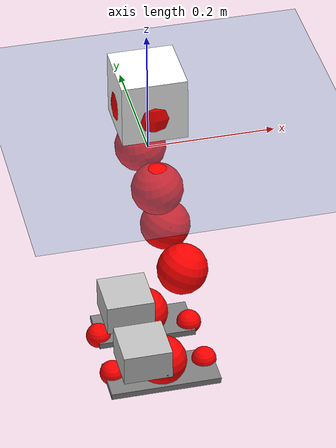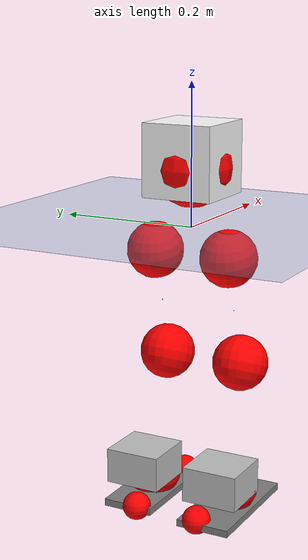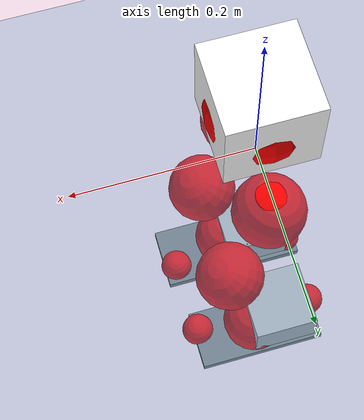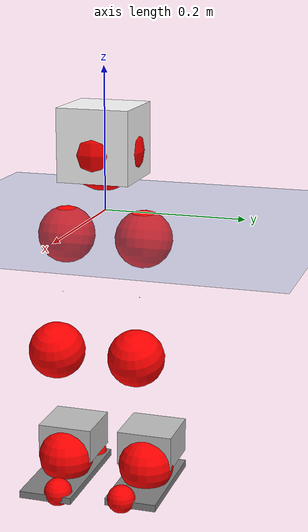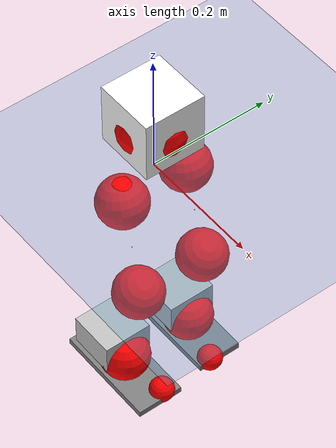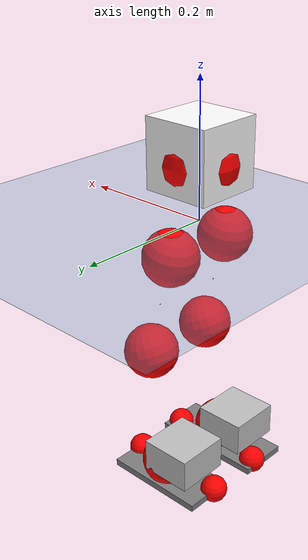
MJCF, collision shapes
<mujoco model="pi_12dof_release_v1">
  <compiler angle="radian" assetdir="assets" balanceinertia="true" inertiafromgeom="false"/>

  <option timestep="0.005" density="1.2" viscosity="2e-05"/>

  <size nkey="1"/>

  <visual>
    <quality shadowsize="8192"/>
    <map shadowclip="0.5"/>
  </visual>

  <default>
    <default class="/">
      <joint armature="0.01" damping="0.01" frictionloss="0.01"/>
      <geom contype="0" conaffinity="0" group="1" solref="-1000 -80"/>
      <site size="0.01 0.005 0.005" group="5"/>
      <general forcelimited="true" biastype="affine" gainprm="20" biasprm="0 -20 -0.5"/>
      <default class="foot">
        <geom size="0.0845 0.036 0.005" type="box" condim="6" group="4" priority="1" friction="0.9 0.2 0.2" solimp="0.015 1 0.005"/>
      </default>
      <default class="reward_collision_sphere">
        <geom group="5" rgba="1 0 0 1"/>
      </default>
    </default>
  </default>

  <asset>
    <texture type="skybox" colorspace="auto" name="//unnamed_texture_0" builtin="gradient" rgb1="0.95 0.95 0.95" rgb2="0.95 0.95 0.95" width="100" height="600"/>
    <texture type="2d" colorspace="auto" name="texplane" builtin="checker" rgb1="0.345 0.575 0.748" rgb2="0.345 0.575 0.748" markrgb="1 1 1" width="512" height="512"/>
    <material name="MatPlane" class="/" texture="texplane" texuniform="true" texrepeat="2 2" specular="0.9"/>
    <mesh name="baselink_1" class="/" file="baselink_1.STL"/>
    <mesh name="r_hip_pitch_link" class="/" file="r_hip_pitch_link.STL"/>
    <mesh name="r_hip_roll_link" class="/" file="r_hip_roll_link.STL"/>
    <mesh name="r_thigh_link" class="/" file="r_thigh_link.STL"/>
    <mesh name="r_calf_link" class="/" file="r_calf_link.STL"/>
    <mesh name="r_ankle_pitch_link" class="/" file="r_ankle_pitch_link.STL"/>
    <mesh name="r_ankle_roll_link" class="/" file="r_ankle_roll_link.STL"/>
    <mesh name="l_hip_pitch_link" class="/" file="l_hip_pitch_link.STL"/>
    <mesh name="l_hip_roll_link" class="/" file="l_hip_roll_link.STL"/>
    <mesh name="l_thigh_link" class="/" file="l_thigh_link.STL"/>
    <mesh name="l_calf_link" class="/" file="l_calf_link.STL"/>
    <mesh name="l_ankle_pitch_link" class="/" file="l_ankle_pitch_link.STL"/>
    <mesh name="l_ankle_roll_link" class="/" file="l_ankle_roll_link.STL"/>
  </asset>

  <worldbody>
    <geom name="floor" class="/" size="100 100 0.125" type="plane" group="0" material="MatPlane"/>
    <light name="toplight_shadow" class="/" pos="0 0 5" dir="0.0990148 0.0990148 -0.990148" type="directional" ambient="0.04 0.04 0.04" diffuse="0.55 0.55 0.55" specular="0.12 0.12 0.12"/>
    <light name="toplight_fill" class="/" pos="0 0 5" dir="0.0990148 0.0990148 -0.990148" type="directional" castshadow="false" ambient="0.04 0.04 0.04" diffuse="0.3 0.3 0.3" specular="0.08 0.08 0.08"/>
    <body name="trunk" pos="5.73532e-05 -0.00115111 0.00101794" quat="1 -0.000386994 -0.000446227 3.49907e-05">
      <inertial pos="0.00225713 -0.00306162 0.049815" quat="0.696319 0.00979312 0.00836887 0.717617" mass="2.22744" diaginertia="0.0164011 0.0017547 0.0100268"/>
      <joint name="//unnamed_joint_0" type="free"/>
      <geom name="//unnamed_geom_1" class="/" type="mesh" density="0" rgba="1 1 1 1" mesh="baselink_1"/>
      <geom name="//unnamed_geom_2" class="/" size="0.0507295 0.0507295 0.0507295" pos="0 0 0.0955528" type="box" rgba="1 1 1 1"/>
      <geom name="//unnamed_geom_3" class="reward_collision_sphere" size="0.0558024" pos="0 0 0.0836087"/>
      <site name="imu" class="/" pos="-0.00102023 0.00277083 0.0027654" size="0.0101459"/>
      <camera name="track" class="/" pos="0 -1.45114 0" quat="0.707107 0.707107 0 0" mode="trackcom"/>
      <camera name="ego_camera" class="/" pos="0.0842843 0 0.214994" quat="-0.5 -0.5 0.5 0.5"/>
      <body name="r_hip_pitch_link" pos="-0.00101205 -0.0169832 -0.0396622" quat="0.992218 -0.000126062 -0.124516 0.000145102">
        <inertial pos="0.0011223 -0.043127 0.000616092" quat="-0.0296812 0.708716 -0.0344516 0.704026" mass="0.383433" diaginertia="0.000191146 1.95623e-05 0.000198339"/>
        <joint name="r_hip_pitch_joint" class="/" pos="0 0 0" axis="0.0019171 -0.999997 -0.00120821" range="-1.72958 1.25659" armature="0.00991616" damping="0.0260186" frictionloss="0.0114421"/>
        <geom name="//unnamed_geom_4" class="/" type="mesh" density="0" rgba="0.75294 0.75294 0.75294 1" mesh="r_hip_pitch_link"/>
        <geom name="//unnamed_geom_5" class="/" size="0.000507295 0.000507295 0.000507295" type="box" rgba="0.75294 0.75294 0.75294 1"/>
        <body name="r_hip_roll_link" pos="0.00205581 -0.03942 -0.000196439" quat="0.999999 0.00014828 0.00120799 -0.000505684">
          <inertial pos="-0.0021628 0.0020119 -0.0714084" quat="0.703893 -0.078108 -0.0834837 0.701045" mass="0.405195" diaginertia="0.000579099 5.75513e-05 0.000311335"/>
          <joint name="r_hip_roll_joint" class="/" pos="0 0 0" axis="-1 -0.000397566 -1.49988e-05" stiffness="0.00127107" range="-0.117171 0.495799" armature="0.0111649" damping="0.0200197" frictionloss="0.010025"/>
          <geom name="//unnamed_geom_6" class="/" type="mesh" density="0" rgba="0.75294 0.75294 0.75294 1" mesh="r_hip_roll_link"/>
          <geom name="//unnamed_geom_7" class="/" size="0.000507295 0.000507295 0.000507295" type="box" rgba="0.75294 0.75294 0.75294 1"/>
          <geom name="//unnamed_geom_8" class="reward_collision_sphere" size="0.0405836"/>
          <body name="r_thigh_link" pos="0.000249984 0.000235889 -0.0820418" quat="1 -7.71477e-05 0.000104504 5.52946e-06">
            <inertial pos="-0.00186024 -0.00029531 -0.0588017" quat="0.735119 0.677933 -0.00259628 0.00109669" mass="0.115063" diaginertia="0.00022171 1.94176e-05 0.000138868"/>
            <joint name="r_thigh_joint" class="/" pos="0 0 0" axis="0.00834664 -0.00282651 -0.999961" range="-0.353909 0.541412" armature="0.0112861" damping="0" frictionloss="0.0114675"/>
            <geom name="//unnamed_geom_9" class="/" type="mesh" density="0" rgba="0.75294 0.75294 0.75294 1" mesh="r_thigh_link"/>
            <geom name="//unnamed_geom_10" class="/" size="0.000507295 0.000507295 0.000507295" type="box" rgba="0.75294 0.75294 0.75294 1"/>
            <body name="r_calf_link" pos="-0.00248708 -0.00305994 -0.0839402" quat="0.947624 -0.000283312 0.319389 -0.000314637">
              <inertial pos="0.000665482 -0.00139423 -0.0828466" quat="0.999875 0.00100791 -0.0056824 0.0147155" mass="0.858627" diaginertia="0.00620586 0.000703166 0.000419996"/>
              <joint name="r_calf_joint" class="/" pos="0 0 0" axis="0.0124219 -0.999897 0.00723775" stiffness="0.000682914" range="-1.65357 0.65999" armature="0.0101982" damping="0.00935648" frictionloss="0.0114095"/>
              <geom name="//unnamed_geom_11" class="/" type="mesh" density="0" rgba="0.75294 0.75294 0.75294 1" mesh="r_calf_link"/>
              <geom name="//unnamed_geom_12" class="/" size="0.000507295 0.000507295 0.000507295" type="box" rgba="0.75294 0.75294 0.75294 1"/>
              <geom name="//unnamed_geom_13" class="reward_collision_sphere" size="0.0405836"/>
              <body name="r_ankle_pitch_link" pos="0.000888798 -0.00186263 -0.169492" quat="0.980065 5.24209e-05 -0.198676 2.89038e-06">
                <inertial pos="0.00538655 0.00179049 0.00225924" quat="0.00335335 0.705905 0.00158781 0.708297" mass="0.180847" diaginertia="0.000542051 4.4445e-05 0.000290214"/>
                <joint name="r_ankle_pitch_joint" class="/" pos="0 0 0" axis="0.00170895 -0.999979 0.00624871" range="-1.32177 0.450487" armature="0.0111601" damping="0.0116146" frictionloss="0.0113613"/>
                <geom name="//unnamed_geom_14" class="/" type="mesh" density="0" rgba="0.75294 0.75294 0.75294 1" mesh="r_ankle_pitch_link"/>
                <geom name="//unnamed_geom_15" class="/" size="0.039569 0.0405836 0.0253647" type="box" rgba="0.75294 0.75294 0.75294 1"/>
                <body name="r_ankle_roll_link" pos="0.0872135 -0.000256429 0.00247931" quat="1 0.000402505 9.66419e-06 -6.59682e-05">
                  <inertial pos="-0.0277351 0.00117597 -0.0170115" quat="0.558865 0.431268 0.436258 0.557993" mass="0.559351" diaginertia="0.00211387 0.000217999 0.000705025"/>
                  <joint name="r_ankle_roll_joint" class="/" pos="0 0 0" axis="-0.999927 0.00745027 0.00955209" stiffness="0.00533355" range="-0.0977236 0.191048" armature="0.00993594" damping="0.0138892" frictionloss="0.00963552"/>
                  <geom name="//unnamed_geom_16" class="/" type="mesh" density="0" rgba="0.75294 0.75294 0.75294 1" mesh="r_ankle_roll_link"/>
                  <geom name="//unnamed_geom_17" class="/" type="mesh" rgba="0.75294 0.75294 0.75294 1" mesh="r_ankle_roll_link"/>
                  <geom name="right_foot" class="foot" size="0.089831 0.0390747 0.0050566" pos="-0.0573133 0 -0.0525541"/>
                  <geom name="//unnamed_geom_19" class="reward_collision_sphere" size="0.0405836" pos="-0.0561895 0 -0.0238882"/>
                  <geom name="//unnamed_geom_20" class="reward_collision_sphere" size="0.0202918" pos="0.0168569 0.0145114 -0.0477764"/>
                  <geom name="//unnamed_geom_21" class="reward_collision_sphere" size="0.0202918" pos="-0.134855 0.0145114 -0.0477764"/>
                  <site name="right_foot" class="foot" pos="-0.0573133 0 -0.0525541" size="0.0101459"/>
                </body>
              </body>
            </body>
          </body>
        </body>
      </body>
      <body name="l_hip_pitch_link" pos="0.000910832 0.017021 -0.0368759" quat="0.992254 -5.01093e-05 -0.124222 0.000129009">
        <inertial pos="5.6029e-05 0.0401653 0.000677476" quat="-0.0394696 0.702947 0.0264875 0.709652" mass="0.396972" diaginertia="0.000234369 2.13268e-05 0.000248377"/>
        <joint name="l_hip_pitch_joint" class="/" pos="0 0 0" axis="0.00168494 0.999992 0.00355165" stiffness="0.0069458" range="-1.24951 1.79914" armature="0.00974075" damping="0.0151034" frictionloss="0.0103009"/>
        <geom name="//unnamed_geom_22" class="/" type="mesh" density="0" rgba="0.75294 0.75294 0.75294 1" mesh="l_hip_pitch_link"/>
        <geom name="//unnamed_geom_23" class="/" size="0.000507295 0.000507295 0.000507295" type="box" rgba="0.75294 0.75294 0.75294 1"/>
        <body name="l_hip_roll_link" pos="-0.00093557 0.0407013 -0.00125037" quat="0.999999 0.000515681 0.000908918 -0.000748252">
          <inertial pos="-0.00338967 0.0025613 -0.0736082" quat="0.699684 -0.0793671 -0.0702577 0.706546" mass="0.392496" diaginertia="0.000594946 5.61532e-05 0.000321738"/>
          <joint name="l_hip_roll_joint" class="/" pos="0 0 0" axis="-0.99999 -0.00188559 0.00407564" range="-0.504669 0.101061" armature="0.0114678" damping="0.00848491" frictionloss="0.0099481"/>
          <geom name="//unnamed_geom_24" class="/" type="mesh" density="0" rgba="0.75294 0.75294 0.75294 1" mesh="l_hip_roll_link"/>
          <geom name="//unnamed_geom_25" class="/" size="0.000507295 0.000507295 0.000507295" type="box" rgba="0.75294 0.75294 0.75294 1"/>
          <geom name="//unnamed_geom_26" class="reward_collision_sphere" size="0.0405836"/>
          <body name="l_thigh_link" pos="0.00109263 0.000262741 -0.0814768" quat="1 1.87963e-05 -9.321e-05 6.68227e-05">
            <inertial pos="0.000485485 0.000600627 -0.0560629" quat="0.677082 0.735907 0.00116637 -0.00044859" mass="0.118424" diaginertia="0.000218412 1.85345e-05 0.000136622"/>
            <joint name="l_thigh_joint" class="/" pos="0 0 0" axis="0.00253193 0.000353438 -0.999997" range="-0.618829 0.281977" armature="0.00994347" damping="0" frictionloss="0.00965475"/>
            <geom name="//unnamed_geom_27" class="/" type="mesh" density="0" rgba="0.75294 0.75294 0.75294 1" mesh="l_thigh_link"/>
            <geom name="//unnamed_geom_28" class="/" size="0.000507295 0.000507295 0.000507295" type="box" rgba="0.75294 0.75294 0.75294 1"/>
            <body name="l_calf_link" pos="-0.00277156 0.00088168 -0.0854764" quat="0.947413 -0.00100717 0.320013 0.000399373">
              <inertial pos="0.000625018 0.00328438 -0.0818727" quat="0.999989 0.00220744 0.000474331 0.0040614" mass="0.848569" diaginertia="0.00630656 0.00069465 0.000438149"/>
              <joint name="l_calf_joint" class="/" pos="0 0 0" axis="0.00146192 0.999998 0.00137258" range="-0.605501 1.66989" armature="0.010311" damping="0.00630805" frictionloss="0.0096092"/>
              <geom name="//unnamed_geom_29" class="/" type="mesh" density="0" rgba="0.75294 0.75294 0.75294 1" mesh="l_calf_link"/>
              <geom name="//unnamed_geom_30" class="/" size="0.000507295 0.000507295 0.000507295" type="box" rgba="0.75294 0.75294 0.75294 1"/>
              <geom name="//unnamed_geom_31" class="reward_collision_sphere" size="0.0405836"/>
              <body name="l_ankle_pitch_link" pos="-0.00106085 0.00289877 -0.166282" quat="0.98 -7.25433e-05 -0.198998 -5.48216e-05">
                <inertial pos="0.00501966 -0.00245821 0.000563494" quat="-0.00133726 0.707312 0.00405526 0.706889" mass="0.179128" diaginertia="0.000544013 4.4631e-05 0.000283835"/>
                <joint name="l_ankle_pitch_joint" class="/" pos="0 0 0" axis="0.000496265 0.999998 -0.00193917" stiffness="0.0101796" range="-0.491327 1.29926" armature="0.00900044" damping="0.0197211" frictionloss="0.00972872"/>
                <geom name="//unnamed_geom_32" class="/" type="mesh" density="0" rgba="0.75294 0.75294 0.75294 1" mesh="l_ankle_pitch_link"/>
                <geom name="//unnamed_geom_33" class="/" size="0.039569 0.0405836 0.0253647" type="box" rgba="0.75294 0.75294 0.75294 1"/>
                <body name="l_ankle_roll_link" pos="0.0854968 0.000736364 -8.7232e-05" quat="1 8.10713e-05 6.45334e-06 -9.96534e-05">
                  <inertial pos="-0.0281482 -0.000290095 -0.0179784" quat="0.559446 0.431515 0.434033 0.558954" mass="0.551006" diaginertia="0.00200727 0.000207769 0.000688354"/>
                  <joint name="l_ankle_roll_joint" class="/" pos="0 0 0" axis="-0.999999 -0.00116607 -0.00116783" range="-0.100825 0.146433" armature="0.0103646" damping="0" frictionloss="0.0105578"/>
                  <geom name="//unnamed_geom_34" class="/" type="mesh" density="0" rgba="0.75294 0.75294 0.75294 1" mesh="l_ankle_roll_link"/>
                  <geom name="//unnamed_geom_35" class="/" type="mesh" rgba="0.75294 0.75294 0.75294 1" mesh="l_ankle_roll_link"/>
                  <geom name="left_foot" class="foot" size="0.0802517 0.0375048 0.00514878" pos="-0.0573133 0 -0.0525541"/>
                  <geom name="//unnamed_geom_37" class="reward_collision_sphere" size="0.0405836" pos="-0.0561895 0 -0.0238882"/>
                  <geom name="//unnamed_geom_38" class="reward_collision_sphere" size="0.0202918" pos="0.0168569 -0.0145114 -0.0477764"/>
                  <geom name="//unnamed_geom_39" class="reward_collision_sphere" size="0.0202918" pos="-0.134855 -0.0145114 -0.0477764"/>
                  <site name="left_foot" class="foot" pos="-0.0573133 0 -0.0525541" size="0.0101459"/>
                </body>
              </body>
            </body>
          </body>
        </body>
      </body>
    </body>
  </worldbody>

  <contact>
    <pair class="/" geom1="floor" geom2="right_foot" name="//unnamed_contact_1"/>
    <pair class="/" geom1="floor" geom2="left_foot" name="//unnamed_contact_0"/>
  </contact>

  <actuator>
    <general name="r_hip_pitch_joint" class="/" joint="r_hip_pitch_joint" forcerange="-21.7866 21.7866" gainprm="20.4341" biasprm="0 -20.4341 -0.501132"/>
    <general name="r_hip_roll_joint" class="/" joint="r_hip_roll_joint" forcerange="-23.4436 23.4436" gainprm="20.4341" biasprm="0 -20.4341 -0.501132"/>
    <general name="r_thigh_joint" class="/" joint="r_thigh_joint" forcerange="-21.4618 21.4618" gainprm="20.4341" biasprm="0 -20.4341 -0.501132"/>
    <general name="r_calf_joint" class="/" joint="r_calf_joint" forcerange="-21.6691 21.6691" gainprm="20.4341" biasprm="0 -20.4341 -0.501132"/>
    <general name="r_ankle_pitch_joint" class="/" joint="r_ankle_pitch_joint" forcerange="-21.3892 21.3892" gainprm="20.4341" biasprm="0 -20.4341 -0.501132"/>
    <general name="r_ankle_roll_joint" class="/" joint="r_ankle_roll_joint" forcerange="-22.6702 22.6702" gainprm="20.4341" biasprm="0 -20.4341 -0.501132"/>
    <general name="l_hip_pitch_joint" class="/" joint="l_hip_pitch_joint" forcerange="-21.1942 21.1942" gainprm="20.4341" biasprm="0 -20.4341 -0.501132"/>
    <general name="l_hip_roll_joint" class="/" joint="l_hip_roll_joint" forcerange="-21.5038 21.5038" gainprm="20.4341" biasprm="0 -20.4341 -0.501132"/>
    <general name="l_thigh_joint" class="/" joint="l_thigh_joint" forcerange="-21.7108 21.7108" gainprm="20.4341" biasprm="0 -20.4341 -0.501132"/>
    <general name="l_calf_joint" class="/" joint="l_calf_joint" forcerange="-21.2649 21.2649" gainprm="20.4341" biasprm="0 -20.4341 -0.501132"/>
    <general name="l_ankle_pitch_joint" class="/" joint="l_ankle_pitch_joint" forcerange="-20.907 20.907" gainprm="20.4341" biasprm="0 -20.4341 -0.501132"/>
    <general name="l_ankle_roll_joint" class="/" joint="l_ankle_roll_joint" forcerange="-20.0122 20.0122" gainprm="20.4341" biasprm="0 -20.4341 -0.501132"/>
  </actuator>

  <sensor>
    <gyro site="imu" name="imu_angular_velocity"/>
    <velocimeter site="imu" name="imu_linear_velocity"/>
    <framelinvel objtype="site" objname="left_foot" name="left_foot_global_linear_velocity"/>
    <framelinvel objtype="site" objname="right_foot" name="right_foot_global_linear_velocity"/>
  </sensor>

  <keyframe>
    <key name="home" qpos="0 0 0.291 1 0 0 0 0.4 0 0 -0.8 0.4 0 -0.4 0 0 0.8 -0.4 0"/>
  </keyframe>
</mujoco>
